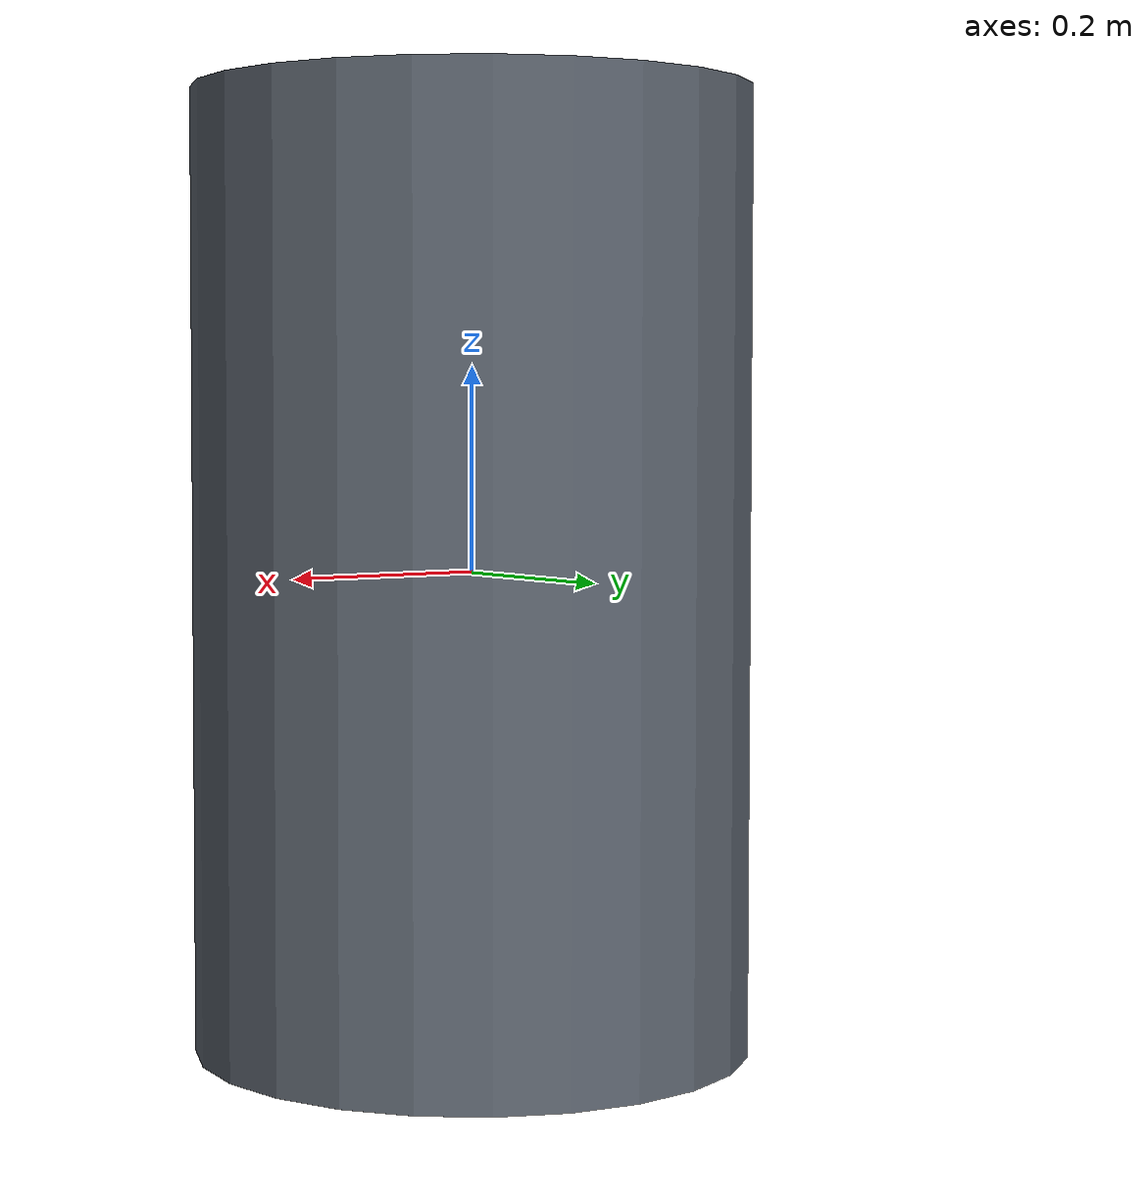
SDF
<?xml version="1.0"?>
<sdf version="1.6">
  <model name="OfficeChairBlack">
    <static>true</static>
    <link name="link">
      <collision name="col">
        <geometry>
          <cylinder>
            <radius>0.27</radius>
            <length>0.93</length>
          </cylinder>
        </geometry>
      </collision>
      <visual name="vis">
        <geometry>
          <cylinder>
            <radius>0.27</radius>
            <length>0.93</length>
          </cylinder>
        </geometry>
        <material>
          <ambient>0.35 0.38 0.42 1</ambient>
          <diffuse>0.35 0.38 0.42 1</diffuse>
        </material>
      </visual>
    </link>
  </model>
</sdf>
